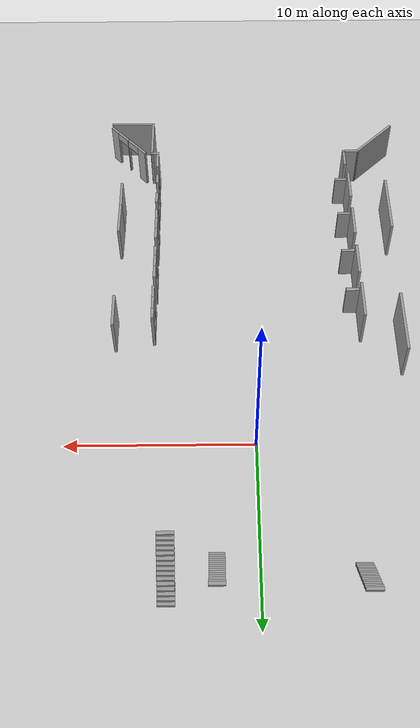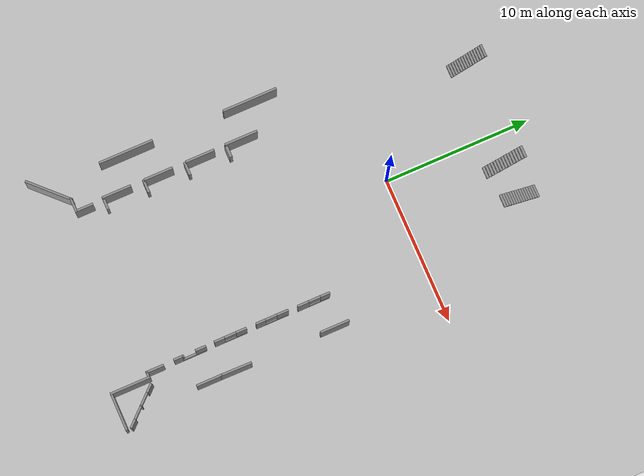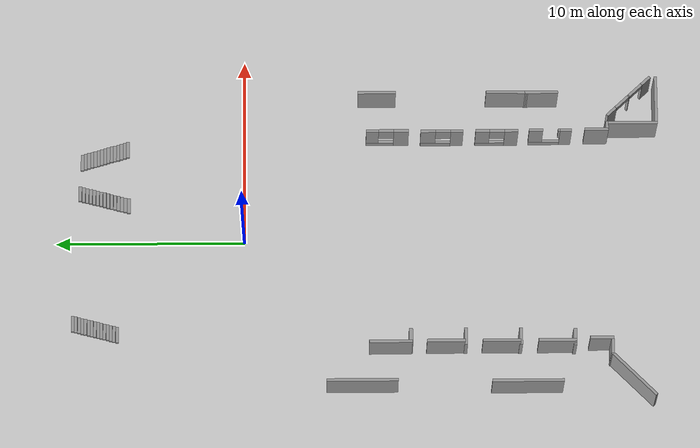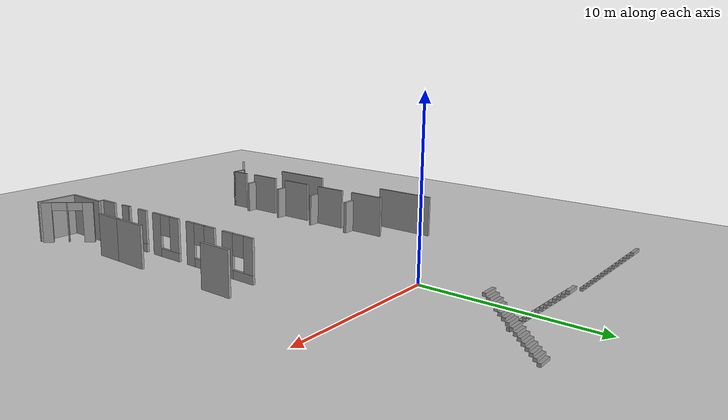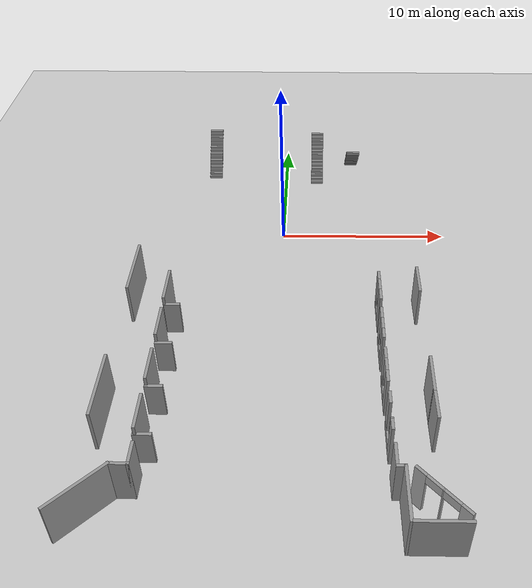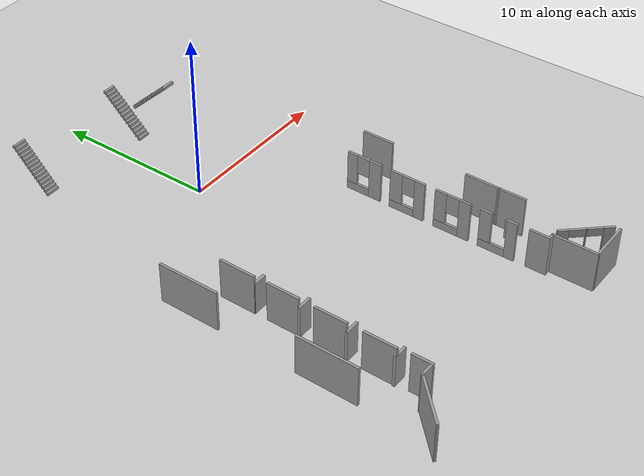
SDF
<sdf version="1.6">
 <world name="default">
  <model name="ground_plane">
   <static>1</static>
   <link name="link">
    <collision name="collision">
     <geometry><plane><normal>0 0 1</normal><size>100 100</size></plane></geometry>
     <surface><friction><ode><mu>100</mu><mu2>50</mu2></ode></friction></surface>
    </collision>
    <visual name="visual">
     <cast_shadows>0</cast_shadows>
     <geometry><plane><normal>0 0 1</normal><size>100 100</size></plane></geometry>
     <material>
      <script><uri>file://media/materials/scripts/gazebo.material</uri><name>Gazebo/Grey</name></script>
     </material>
    </visual>
   </link>
  </model>
  <model name="Parte_DX_(visione_alta_mappa)_CV1">
   <pose>7.84951 -6.02799 0 0 -0 0</pose>
   <link name="Stairs_0">
    <visual name="Stairs_0_Visual_0">
     <pose>-5.77033 12.1776 0.083333 0 -0 -3.14159</pose>
     <geometry><box><size>0.790783 0.17667 0.166667</size></box></geometry>
     <material>
      <script><uri>file://media/materials/scripts/gazebo.material</uri><name>Gazebo/Grey</name></script>
      <ambient>1 1 1 1</ambient>
     </material>
    </visual>
    <collision name="Stairs_0_Collision_0">
     <geometry><box><size>0.790783 0.17667 0.166667</size></box></geometry>
     <pose>-5.77033 12.1776 0.083333 0 -0 -3.14159</pose>
    </collision>
    <visual name="Stairs_0_Visual_1">
     <pose>-5.77033 12.3543 0.25 0 -0 -3.14159</pose>
     <geometry><box><size>0.790783 0.17667 0.166667</size></box></geometry>
     <material>
      <script><uri>file://media/materials/scripts/gazebo.material</uri><name>Gazebo/Grey</name></script>
      <ambient>1 1 1 1</ambient>
     </material>
    </visual>
    <collision name="Stairs_0_Collision_1">
     <geometry><box><size>0.790783 0.17667 0.166667</size></box></geometry>
     <pose>-5.77033 12.3543 0.25 0 -0 -3.14159</pose>
    </collision>
    <visual name="Stairs_0_Visual_2">
     <pose>-5.77033 12.531 0.416667 0 -0 -3.14159</pose>
     <geometry><box><size>0.790783 0.17667 0.166667</size></box></geometry>
     <material>
      <script><uri>file://media/materials/scripts/gazebo.material</uri><name>Gazebo/Grey</name></script>
      <ambient>1 1 1 1</ambient>
     </material>
    </visual>
    <collision name="Stairs_0_Collision_2">
     <geometry><box><size>0.790783 0.17667 0.166667</size></box></geometry>
     <pose>-5.77033 12.531 0.416667 0 -0 -3.14159</pose>
    </collision>
    <visual name="Stairs_0_Visual_3">
     <pose>-5.77033 12.7077 0.583333 0 -0 -3.14159</pose>
     <geometry><box><size>0.790783 0.17667 0.166667</size></box></geometry>
     <material>
      <script><uri>file://media/materials/scripts/gazebo.material</uri><name>Gazebo/Grey</name></script>
      <ambient>1 1 1 1</ambient>
     </material>
    </visual>
    <collision name="Stairs_0_Collision_3">
     <geometry><box><size>0.790783 0.17667 0.166667</size></box></geometry>
     <pose>-5.77033 12.7077 0.583333 0 -0 -3.14159</pose>
    </collision>
    <visual name="Stairs_0_Visual_4">
     <pose>-5.77033 12.8843 0.75 0 -0 -3.14159</pose>
     <geometry><box><size>0.790783 0.17667 0.166667</size></box></geometry>
     <material>
      <script><uri>file://media/materials/scripts/gazebo.material</uri><name>Gazebo/Grey</name></script>
      <ambient>1 1 1 1</ambient>
     </material>
    </visual>
    <collision name="Stairs_0_Collision_4">
     <geometry><box><size>0.790783 0.17667 0.166667</size></box></geometry>
     <pose>-5.77033 12.8843 0.75 0 -0 -3.14159</pose>
    </collision>
    <visual name="Stairs_0_Visual_5">
     <pose>-5.77033 13.061 0.916667 0 -0 -3.14159</pose>
     <geometry><box><size>0.790783 0.17667 0.166667</size></box></geometry>
     <material>
      <script><uri>file://media/materials/scripts/gazebo.material</uri><name>Gazebo/Grey</name></script>
      <ambient>1 1 1 1</ambient>
     </material>
    </visual>
    <collision name="Stairs_0_Collision_5">
     <geometry><box><size>0.790783 0.17667 0.166667</size></box></geometry>
     <pose>-5.77033 13.061 0.916667 0 -0 -3.14159</pose>
    </collision>
    <visual name="Stairs_0_Visual_6">
     <pose>-5.77033 13.2377 1.08333 0 -0 -3.14159</pose>
     <geometry><box><size>0.790783 0.17667 0.166667</size></box></geometry>
     <material>
      <script><uri>file://media/materials/scripts/gazebo.material</uri><name>Gazebo/Grey</name></script>
      <ambient>1 1 1 1</ambient>
     </material>
    </visual>
    <collision name="Stairs_0_Collision_6">
     <geometry><box><size>0.790783 0.17667 0.166667</size></box></geometry>
     <pose>-5.77033 13.2377 1.08333 0 -0 -3.14159</pose>
    </collision>
    <visual name="Stairs_0_Visual_7">
     <pose>-5.77033 13.4143 1.25 0 -0 -3.14159</pose>
     <geometry><box><size>0.790783 0.17667 0.166667</size></box></geometry>
     <material>
      <script><uri>file://media/materials/scripts/gazebo.material</uri><name>Gazebo/Grey</name></script>
      <ambient>1 1 1 1</ambient>
     </material>
    </visual>
    <collision name="Stairs_0_Collision_7">
     <geometry><box><size>0.790783 0.17667 0.166667</size></box></geometry>
     <pose>-5.77033 13.4143 1.25 0 -0 -3.14159</pose>
    </collision>
    <visual name="Stairs_0_Visual_8">
     <pose>-5.77033 13.591 1.41667 0 -0 -3.14159</pose>
     <geometry><box><size>0.790783 0.17667 0.166667</size></box></geometry>
     <material>
      <script><uri>file://media/materials/scripts/gazebo.material</uri><name>Gazebo/Grey</name></script>
      <ambient>1 1 1 1</ambient>
     </material>
    </visual>
    <collision name="Stairs_0_Collision_8">
     <geometry><box><size>0.790783 0.17667 0.166667</size></box></geometry>
     <pose>-5.77033 13.591 1.41667 0 -0 -3.14159</pose>
    </collision>
    <visual name="Stairs_0_Visual_9">
     <pose>-5.77033 13.7677 1.58333 0 -0 -3.14159</pose>
     <geometry><box><size>0.790783 0.17667 0.166667</size></box></geometry>
     <material>
      <script><uri>file://media/materials/scripts/gazebo.material</uri><name>Gazebo/Grey</name></script>
      <ambient>1 1 1 1</ambient>
     </material>
    </visual>
    <collision name="Stairs_0_Collision_9">
     <geometry><box><size>0.790783 0.17667 0.166667</size></box></geometry>
     <pose>-5.77033 13.7677 1.58333 0 -0 -3.14159</pose>
    </collision>
    <visual name="Stairs_0_Visual_10">
     <pose>-5.77033 13.9443 1.75 0 -0 -3.14159</pose>
     <geometry><box><size>0.790783 0.17667 0.166667</size></box></geometry>
     <material>
      <script><uri>file://media/materials/scripts/gazebo.material</uri><name>Gazebo/Grey</name></script>
      <ambient>1 1 1 1</ambient>
     </material>
    </visual>
    <collision name="Stairs_0_Collision_10">
     <geometry><box><size>0.790783 0.17667 0.166667</size></box></geometry>
     <pose>-5.77033 13.9443 1.75 0 -0 -3.14159</pose>
    </collision>
    <visual name="Stairs_0_Visual_11">
     <pose>-5.77033 14.121 1.91667 0 -0 -3.14159</pose>
     <geometry><box><size>0.790783 0.17667 0.166667</size></box></geometry>
     <material>
      <script><uri>file://media/materials/scripts/gazebo.material</uri><name>Gazebo/Grey</name></script>
      <ambient>1 1 1 1</ambient>
     </material>
    </visual>
    <collision name="Stairs_0_Collision_11">
     <geometry><box><size>0.790783 0.17667 0.166667</size></box></geometry>
     <pose>-5.77033 14.121 1.91667 0 -0 -3.14159</pose>
    </collision>
    <visual name="Stairs_0_Visual_12">
     <pose>-5.77033 14.2977 2.08333 0 -0 -3.14159</pose>
     <geometry><box><size>0.790783 0.17667 0.166667</size></box></geometry>
     <material>
      <script><uri>file://media/materials/scripts/gazebo.material</uri><name>Gazebo/Grey</name></script>
      <ambient>1 1 1 1</ambient>
     </material>
    </visual>
    <collision name="Stairs_0_Collision_12">
     <geometry><box><size>0.790783 0.17667 0.166667</size></box></geometry>
     <pose>-5.77033 14.2977 2.08333 0 -0 -3.14159</pose>
    </collision>
    <visual name="Stairs_0_Visual_13">
     <pose>-5.77033 14.4744 2.25 0 -0 -3.14159</pose>
     <geometry><box><size>0.790783 0.17667 0.166667</size></box></geometry>
     <material>
      <script><uri>file://media/materials/scripts/gazebo.material</uri><name>Gazebo/Grey</name></script>
      <ambient>1 1 1 1</ambient>
     </material>
    </visual>
    <collision name="Stairs_0_Collision_13">
     <geometry><box><size>0.790783 0.17667 0.166667</size></box></geometry>
     <pose>-5.77033 14.4744 2.25 0 -0 -3.14159</pose>
    </collision>
    <visual name="Stairs_0_Visual_14">
     <pose>-5.77033 14.651 2.41667 0 -0 -3.14159</pose>
     <geometry><box><size>0.790783 0.17667 0.166667</size></box></geometry>
     <material>
      <script><uri>file://media/materials/scripts/gazebo.material</uri><name>Gazebo/Grey</name></script>
      <ambient>1 1 1 1</ambient>
     </material>
    </visual>
    <collision name="Stairs_0_Collision_14">
     <geometry><box><size>0.790783 0.17667 0.166667</size></box></geometry>
     <pose>-5.77033 14.651 2.41667 0 -0 -3.14159</pose>
    </collision>
   </link>
   <link name="Stairs_1">
    <visual name="Stairs_1_Visual_0">
     <pose>-3.36416 14.6621 0.083333 0 -0 0</pose>
     <geometry><box><size>0.856163 0.179286 0.166667</size></box></geometry>
     <material>
      <script><uri>file://media/materials/scripts/gazebo.material</uri><name>Gazebo/Grey</name></script>
      <ambient>1 1 1 1</ambient>
     </material>
    </visual>
    <collision name="Stairs_1_Collision_0">
     <geometry><box><size>0.856163 0.179286 0.166667</size></box></geometry>
     <pose>-3.36416 14.6621 0.083333 0 -0 0</pose>
    </collision>
    <visual name="Stairs_1_Visual_1">
     <pose>-3.36416 14.4828 0.25 0 -0 0</pose>
     <geometry><box><size>0.856163 0.179286 0.166667</size></box></geometry>
     <material>
      <script><uri>file://media/materials/scripts/gazebo.material</uri><name>Gazebo/Grey</name></script>
      <ambient>1 1 1 1</ambient>
     </material>
    </visual>
    <collision name="Stairs_1_Collision_1">
     <geometry><box><size>0.856163 0.179286 0.166667</size></box></geometry>
     <pose>-3.36416 14.4828 0.25 0 -0 0</pose>
    </collision>
    <visual name="Stairs_1_Visual_2">
     <pose>-3.36416 14.3035 0.416667 0 -0 0</pose>
     <geometry><box><size>0.856163 0.179286 0.166667</size></box></geometry>
     <material>
      <script><uri>file://media/materials/scripts/gazebo.material</uri><name>Gazebo/Grey</name></script>
      <ambient>1 1 1 1</ambient>
     </material>
    </visual>
    <collision name="Stairs_1_Collision_2">
     <geometry><box><size>0.856163 0.179286 0.166667</size></box></geometry>
     <pose>-3.36416 14.3035 0.416667 0 -0 0</pose>
    </collision>
    <visual name="Stairs_1_Visual_3">
     <pose>-3.36416 14.1242 0.583333 0 -0 0</pose>
     <geometry><box><size>0.856163 0.179286 0.166667</size></box></geometry>
     <material>
      <script><uri>file://media/materials/scripts/gazebo.material</uri><name>Gazebo/Grey</name></script>
      <ambient>1 1 1 1</ambient>
     </material>
    </visual>
    <collision name="Stairs_1_Collision_3">
     <geometry><box><size>0.856163 0.179286 0.166667</size></box></geometry>
     <pose>-3.36416 14.1242 0.583333 0 -0 0</pose>
    </collision>
    <visual name="Stairs_1_Visual_4">
     <pose>-3.36416 13.9449 0.75 0 -0 0</pose>
     <geometry><box><size>0.856163 0.179286 0.166667</size></box></geometry>
     <material>
      <script><uri>file://media/materials/scripts/gazebo.material</uri><name>Gazebo/Grey</name></script>
      <ambient>1 1 1 1</ambient>
     </material>
    </visual>
    <collision name="Stairs_1_Collision_4">
     <geometry><box><size>0.856163 0.179286 0.166667</size></box></geometry>
     <pose>-3.36416 13.9449 0.75 0 -0 0</pose>
    </collision>
    <visual name="Stairs_1_Visual_5">
     <pose>-3.36416 13.7656 0.916667 0 -0 0</pose>
     <geometry><box><size>0.856163 0.179286 0.166667</size></box></geometry>
     <material>
      <script><uri>file://media/materials/scripts/gazebo.material</uri><name>Gazebo/Grey</name></script>
      <ambient>1 1 1 1</ambient>
     </material>
    </visual>
    <collision name="Stairs_1_Collision_5">
     <geometry><box><size>0.856163 0.179286 0.166667</size></box></geometry>
     <pose>-3.36416 13.7656 0.916667 0 -0 0</pose>
    </collision>
    <visual name="Stairs_1_Visual_6">
     <pose>-3.36416 13.5863 1.08333 0 -0 0</pose>
     <geometry><box><size>0.856163 0.179286 0.166667</size></box></geometry>
     <material>
      <script><uri>file://media/materials/scripts/gazebo.material</uri><name>Gazebo/Grey</name></script>
      <ambient>1 1 1 1</ambient>
     </material>
    </visual>
    <collision name="Stairs_1_Collision_6">
     <geometry><box><size>0.856163 0.179286 0.166667</size></box></geometry>
     <pose>-3.36416 13.5863 1.08333 0 -0 0</pose>
    </collision>
    <visual name="Stairs_1_Visual_7">
     <pose>-3.36416 13.4071 1.25 0 -0 0</pose>
     <geometry><box><size>0.856163 0.179286 0.166667</size></box></geometry>
     <material>
      <script><uri>file://media/materials/scripts/gazebo.material</uri><name>Gazebo/Grey</name></script>
      <ambient>1 1 1 1</ambient>
     </material>
    </visual>
    <collision name="Stairs_1_Collision_7">
     <geometry><box><size>0.856163 0.179286 0.166667</size></box></geometry>
     <pose>-3.36416 13.4071 1.25 0 -0 0</pose>
    </collision>
    <visual name="Stairs_1_Visual_8">
     <pose>-3.36416 13.2278 1.41667 0 -0 0</pose>
     <geometry><box><size>0.856163 0.179286 0.166667</size></box></geometry>
     <material>
      <script><uri>file://media/materials/scripts/gazebo.material</uri><name>Gazebo/Grey</name></script>
      <ambient>1 1 1 1</ambient>
     </material>
    </visual>
    <collision name="Stairs_1_Collision_8">
     <geometry><box><size>0.856163 0.179286 0.166667</size></box></geometry>
     <pose>-3.36416 13.2278 1.41667 0 -0 0</pose>
    </collision>
    <visual name="Stairs_1_Visual_9">
     <pose>-3.36416 13.0485 1.58333 0 -0 0</pose>
     <geometry><box><size>0.856163 0.179286 0.166667</size></box></geometry>
     <material>
      <script><uri>file://media/materials/scripts/gazebo.material</uri><name>Gazebo/Grey</name></script>
      <ambient>1 1 1 1</ambient>
     </material>
    </visual>
    <collision name="Stairs_1_Collision_9">
     <geometry><box><size>0.856163 0.179286 0.166667</size></box></geometry>
     <pose>-3.36416 13.0485 1.58333 0 -0 0</pose>
    </collision>
    <visual name="Stairs_1_Visual_10">
     <pose>-3.36416 12.8692 1.75 0 -0 0</pose>
     <geometry><box><size>0.856163 0.179286 0.166667</size></box></geometry>
     <material>
      <script><uri>file://media/materials/scripts/gazebo.material</uri><name>Gazebo/Grey</name></script>
      <ambient>1 1 1 1</ambient>
     </material>
    </visual>
    <collision name="Stairs_1_Collision_10">
     <geometry><box><size>0.856163 0.179286 0.166667</size></box></geometry>
     <pose>-3.36416 12.8692 1.75 0 -0 0</pose>
    </collision>
    <visual name="Stairs_1_Visual_11">
     <pose>-3.36416 12.6899 1.91667 0 -0 0</pose>
     <geometry><box><size>0.856163 0.179286 0.166667</size></box></geometry>
     <material>
      <script><uri>file://media/materials/scripts/gazebo.material</uri><name>Gazebo/Grey</name></script>
      <ambient>1 1 1 1</ambient>
     </material>
    </visual>
    <collision name="Stairs_1_Collision_11">
     <geometry><box><size>0.856163 0.179286 0.166667</size></box></geometry>
     <pose>-3.36416 12.6899 1.91667 0 -0 0</pose>
    </collision>
    <visual name="Stairs_1_Visual_12">
     <pose>-3.36416 12.5106 2.08333 0 -0 0</pose>
     <geometry><box><size>0.856163 0.179286 0.166667</size></box></geometry>
     <material>
      <script><uri>file://media/materials/scripts/gazebo.material</uri><name>Gazebo/Grey</name></script>
      <ambient>1 1 1 1</ambient>
     </material>
    </visual>
    <collision name="Stairs_1_Collision_12">
     <geometry><box><size>0.856163 0.179286 0.166667</size></box></geometry>
     <pose>-3.36416 12.5106 2.08333 0 -0 0</pose>
    </collision>
    <visual name="Stairs_1_Visual_13">
     <pose>-3.36416 12.3313 2.25 0 -0 0</pose>
     <geometry><box><size>0.856163 0.179286 0.166667</size></box></geometry>
     <material>
      <script><uri>file://media/materials/scripts/gazebo.material</uri><name>Gazebo/Grey</name></script>
      <ambient>1 1 1 1</ambient>
     </material>
    </visual>
    <collision name="Stairs_1_Collision_13">
     <geometry><box><size>0.856163 0.179286 0.166667</size></box></geometry>
     <pose>-3.36416 12.3313 2.25 0 -0 0</pose>
    </collision>
    <visual name="Stairs_1_Visual_14">
     <pose>-3.36416 12.1521 2.41667 0 -0 0</pose>
     <geometry><box><size>0.856163 0.179286 0.166667</size></box></geometry>
     <material>
      <script><uri>file://media/materials/scripts/gazebo.material</uri><name>Gazebo/Grey</name></script>
      <ambient>1 1 1 1</ambient>
     </material>
    </visual>
    <collision name="Stairs_1_Collision_14">
     <geometry><box><size>0.856163 0.179286 0.166667</size></box></geometry>
     <pose>-3.36416 12.1521 2.41667 0 -0 0</pose>
    </collision>
   </link>
   <link name="Wall_103">
    <collision name="Wall_103_Collision">
     <geometry><box><size>2 0.15 2.5</size></box></geometry>
     <pose>0 0 1.25 0 -0 0</pose>
    </collision>
    <visual name="Wall_103_Visual">
     <pose>0 0 1.25 0 -0 0</pose>
     <geometry><box><size>2 0.15 2.5</size></box></geometry>
     <material>
      <script><uri>file://media/materials/scripts/gazebo.material</uri><name>Gazebo/Grey</name></script>
      <ambient>1 1 1 1</ambient>
     </material>
    </visual>
    <pose>-0.253384 -1.01188 0 0 0 -1.5708</pose>
   </link>
   <link name="Wall_113">
    <collision name="Wall_113_Collision">
     <geometry><box><size>2.21308 0.15 2.5</size></box></geometry>
     <pose>0 0 1.25 0 -0 0</pose>
    </collision>
    <visual name="Wall_113_Visual">
     <pose>0 0 1.25 0 -0 0</pose>
     <geometry><box><size>2.21308 0.15 2.5</size></box></geometry>
     <material>
      <script><uri>file://media/materials/scripts/gazebo.material</uri><name>Gazebo/Grey</name></script>
      <ambient>1 1 1 1</ambient>
     </material>
    </visual>
    <pose>-0.262289 -7.91149 0 0 0 -1.58491</pose>
   </link>
   <link name="Wall_150">
    <collision name="Wall_150_Collision">
     <geometry><box><size>2.5 0.15 2.5</size></box></geometry>
     <pose>0 0 1.25 0 -0 0</pose>
    </collision>
    <visual name="Wall_150_Visual">
     <pose>0 0 1.25 0 -0 0</pose>
     <geometry><box><size>2.5 0.15 2.5</size></box></geometry>
     <material>
      <script><uri>file://media/materials/scripts/gazebo.material</uri><name>Gazebo/Grey</name></script>
      <ambient>1 1 1 1</ambient>
     </material>
    </visual>
    <pose>-0.698526 -15.7953 0 0 -0 0</pose>
   </link>
   <link name="Wall_157">
    <collision name="Wall_157_Collision">
     <geometry><box><size>2.75 0.15 2.5</size></box></geometry>
     <pose>0 0 1.25 0 -0 0</pose>
    </collision>
    <visual name="Wall_157_Visual">
     <pose>0 0 1.25 0 -0 0</pose>
     <geometry><box><size>2.75 0.15 2.5</size></box></geometry>
     <material>
      <script><uri>file://media/materials/scripts/gazebo.material</uri><name>Gazebo/Grey</name></script>
      <ambient>1 1 1 1</ambient>
     </material>
    </visual>
    <pose>-1.9853 -14.4816 0 0 0 -1.5708</pose>
   </link>
   <link name="Wall_160">
    <collision name="Wall_160_Collision">
     <geometry><box><size>0.5 0.15 2.5</size></box></geometry>
     <pose>0 0 1.25 0 -0 0</pose>
    </collision>
    <visual name="Wall_160_Visual">
     <pose>0 0 1.25 0 -0 0</pose>
     <geometry><box><size>0.5 0.15 2.5</size></box></geometry>
     <material>
      <script><uri>file://media/materials/scripts/gazebo.material</uri><name>Gazebo/Grey</name></script>
      <ambient>1 1 1 1</ambient>
     </material>
    </visual>
    <pose>-2.1603 -13.1816 0 0 -0 3.14159</pose>
   </link>
   <link name="Wall_162">
    <collision name="Wall_162_Collision">
     <geometry><box><size>1.25 0.15 2.5</size></box></geometry>
     <pose>0 0 1.25 0 -0 0</pose>
    </collision>
    <visual name="Wall_162_Visual">
     <pose>0 0 1.25 0 -0 0</pose>
     <geometry><box><size>1.25 0.15 2.5</size></box></geometry>
     <material>
      <script><uri>file://media/materials/scripts/gazebo.material</uri><name>Gazebo/Grey</name></script>
      <ambient>1 1 1 1</ambient>
     </material>
    </visual>
    <pose>-2.3378 -12.6298 0 0 0 -1.5708</pose>
   </link>
   <link name="Wall_168">
    <pose>-2.37767 -10.186 0 0 -0 1.5708</pose>
    <visual name="Wall_168_Visual_0">
     <pose>-0.818759 0 1.25 0 -0 0</pose>
     <geometry><box><size>0.612482 0.15 2.5</size></box></geometry>
     <material>
      <script><uri>file://media/materials/scripts/gazebo.material</uri><name>Gazebo/Grey</name></script>
      <ambient>1 1 1 1</ambient>
     </material>
    </visual>
    <collision name="Wall_168_Collision_0">
     <geometry><box><size>0.612482 0.15 2.5</size></box></geometry>
     <pose>-0.818759 0 1.25 0 -0 0</pose>
    </collision>
    <visual name="Wall_168_Visual_1">
     <pose>0.306241 0 0.25 0 -0 0</pose>
     <geometry><box><size>1.63752 0.15 0.5</size></box></geometry>
     <material>
      <script><uri>file://media/materials/scripts/gazebo.material</uri><name>Gazebo/Grey</name></script>
      <ambient>1 1 1 1</ambient>
     </material>
    </visual>
    <collision name="Wall_168_Collision_1">
     <geometry><box><size>1.63752 0.15 0.5</size></box></geometry>
     <pose>0.306241 0 0.25 0 -0 0</pose>
    </collision>
    <visual name="Wall_168_Visual_2">
     <pose>0.760521 0 1.5 0 -0 0</pose>
     <geometry><box><size>0.728959 0.15 2</size></box></geometry>
     <material>
      <script><uri>file://media/materials/scripts/gazebo.material</uri><name>Gazebo/Grey</name></script>
      <ambient>1 1 1 1</ambient>
     </material>
    </visual>
    <collision name="Wall_168_Collision_2">
     <geometry><box><size>0.728959 0.15 2</size></box></geometry>
     <pose>0.760521 0 1.5 0 -0 0</pose>
    </collision>
    <visual name="Wall_168_Visual_3">
     <pose>-0.458239 0 1.9 0 -0 0</pose>
     <geometry><box><size>0.10856 0.15 1.2</size></box></geometry>
     <material>
      <script><uri>file://media/materials/scripts/gazebo.material</uri><name>Gazebo/Grey</name></script>
      <ambient>1 1 1 1</ambient>
     </material>
    </visual>
    <collision name="Wall_168_Collision_3">
     <geometry><box><size>0.10856 0.15 1.2</size></box></geometry>
     <pose>-0.458239 0 1.9 0 -0 0</pose>
    </collision>
   </link>
   <link name="Wall_170">
    <pose>-2.40042 -7.35471 0 0 -0 1.5708</pose>
    <visual name="Wall_170_Visual_0">
     <pose>-0.770697 0 1.25 0 -0 0</pose>
     <geometry><box><size>0.708605 0.15 2.5</size></box></geometry>
     <material>
      <script><uri>file://media/materials/scripts/gazebo.material</uri><name>Gazebo/Grey</name></script>
      <ambient>1 1 1 1</ambient>
     </material>
    </visual>
    <collision name="Wall_170_Collision_0">
     <geometry><box><size>0.708605 0.15 2.5</size></box></geometry>
     <pose>-0.770697 0 1.25 0 -0 0</pose>
    </collision>
    <visual name="Wall_170_Visual_1">
     <pose>0.354303 0 0.25 0 -0 0</pose>
     <geometry><box><size>1.5414 0.15 0.5</size></box></geometry>
     <material>
      <script><uri>file://media/materials/scripts/gazebo.material</uri><name>Gazebo/Grey</name></script>
      <ambient>1 1 1 1</ambient>
     </material>
    </visual>
    <collision name="Wall_170_Collision_1">
     <geometry><box><size>1.5414 0.15 0.5</size></box></geometry>
     <pose>0.354303 0 0.25 0 -0 0</pose>
    </collision>
    <visual name="Wall_170_Visual_2">
     <pose>0.754303 0 1.5 0 -0 0</pose>
     <geometry><box><size>0.741395 0.15 2</size></box></geometry>
     <material>
      <script><uri>file://media/materials/scripts/gazebo.material</uri><name>Gazebo/Grey</name></script>
      <ambient>1 1 1 1</ambient>
     </material>
    </visual>
    <collision name="Wall_170_Collision_2">
     <geometry><box><size>0.741395 0.15 2</size></box></geometry>
     <pose>0.754303 0 1.5 0 -0 0</pose>
    </collision>
    <visual name="Wall_170_Visual_3">
     <pose>-0.016395 0 1.9 0 -0 0</pose>
     <geometry><box><size>0.8 0.15 1.2</size></box></geometry>
     <material>
      <script><uri>file://media/materials/scripts/gazebo.material</uri><name>Gazebo/Grey</name></script>
      <ambient>1 1 1 1</ambient>
     </material>
    </visual>
    <collision name="Wall_170_Collision_3">
     <geometry><box><size>0.8 0.15 1.2</size></box></geometry>
     <pose>-0.016395 0 1.9 0 -0 0</pose>
    </collision>
   </link>
   <link name="Wall_172">
    <pose>-2.40402 -4.44612 0 0 -0 1.5708</pose>
    <visual name="Wall_172_Visual_0">
     <pose>-0.795609 0 1.25 0 -0 0</pose>
     <geometry><box><size>0.658782 0.15 2.5</size></box></geometry>
     <material>
      <script><uri>file://media/materials/scripts/gazebo.material</uri><name>Gazebo/Grey</name></script>
      <ambient>1 1 1 1</ambient>
     </material>
    </visual>
    <collision name="Wall_172_Collision_0">
     <geometry><box><size>0.658782 0.15 2.5</size></box></geometry>
     <pose>-0.795609 0 1.25 0 -0 0</pose>
    </collision>
    <visual name="Wall_172_Visual_1">
     <pose>0.329391 0 0.25 0 -0 0</pose>
     <geometry><box><size>1.59122 0.15 0.5</size></box></geometry>
     <material>
      <script><uri>file://media/materials/scripts/gazebo.material</uri><name>Gazebo/Grey</name></script>
      <ambient>1 1 1 1</ambient>
     </material>
    </visual>
    <collision name="Wall_172_Collision_1">
     <geometry><box><size>1.59122 0.15 0.5</size></box></geometry>
     <pose>0.329391 0 0.25 0 -0 0</pose>
    </collision>
    <visual name="Wall_172_Visual_2">
     <pose>0.729391 0 1.5 0 -0 0</pose>
     <geometry><box><size>0.791218 0.15 2</size></box></geometry>
     <material>
      <script><uri>file://media/materials/scripts/gazebo.material</uri><name>Gazebo/Grey</name></script>
      <ambient>1 1 1 1</ambient>
     </material>
    </visual>
    <collision name="Wall_172_Collision_2">
     <geometry><box><size>0.791218 0.15 2</size></box></geometry>
     <pose>0.729391 0 1.5 0 -0 0</pose>
    </collision>
    <visual name="Wall_172_Visual_3">
     <pose>-0.066218 0 1.9 0 -0 0</pose>
     <geometry><box><size>0.8 0.15 1.2</size></box></geometry>
     <material>
      <script><uri>file://media/materials/scripts/gazebo.material</uri><name>Gazebo/Grey</name></script>
      <ambient>1 1 1 1</ambient>
     </material>
    </visual>
    <collision name="Wall_172_Collision_3">
     <geometry><box><size>0.8 0.15 1.2</size></box></geometry>
     <pose>-0.066218 0 1.9 0 -0 0</pose>
    </collision>
   </link>
   <link name="Wall_174">
    <pose>-2.37395 -1.55892 0 0 -0 1.5708</pose>
    <visual name="Wall_174_Visual_0">
     <pose>-0.729778 0 1.25 0 -0 0</pose>
     <geometry><box><size>0.790443 0.15 2.5</size></box></geometry>
     <material>
      <script><uri>file://media/materials/scripts/gazebo.material</uri><name>Gazebo/Grey</name></script>
      <ambient>1 1 1 1</ambient>
     </material>
    </visual>
    <collision name="Wall_174_Collision_0">
     <geometry><box><size>0.790443 0.15 2.5</size></box></geometry>
     <pose>-0.729778 0 1.25 0 -0 0</pose>
    </collision>
    <visual name="Wall_174_Visual_1">
     <pose>0.395222 0 0.25 0 -0 0</pose>
     <geometry><box><size>1.45956 0.15 0.5</size></box></geometry>
     <material>
      <script><uri>file://media/materials/scripts/gazebo.material</uri><name>Gazebo/Grey</name></script>
      <ambient>1 1 1 1</ambient>
     </material>
    </visual>
    <collision name="Wall_174_Collision_1">
     <geometry><box><size>1.45956 0.15 0.5</size></box></geometry>
     <pose>0.395222 0 0.25 0 -0 0</pose>
    </collision>
    <visual name="Wall_174_Visual_2">
     <pose>0.795222 0 1.5 0 -0 0</pose>
     <geometry><box><size>0.659557 0.15 2</size></box></geometry>
     <material>
      <script><uri>file://media/materials/scripts/gazebo.material</uri><name>Gazebo/Grey</name></script>
      <ambient>1 1 1 1</ambient>
     </material>
    </visual>
    <collision name="Wall_174_Collision_2">
     <geometry><box><size>0.659557 0.15 2</size></box></geometry>
     <pose>0.795222 0 1.5 0 -0 0</pose>
    </collision>
    <visual name="Wall_174_Visual_3">
     <pose>0.065443 0 1.9 0 -0 0</pose>
     <geometry><box><size>0.8 0.15 1.2</size></box></geometry>
     <material>
      <script><uri>file://media/materials/scripts/gazebo.material</uri><name>Gazebo/Grey</name></script>
      <ambient>1 1 1 1</ambient>
     </material>
    </visual>
    <collision name="Wall_174_Collision_3">
     <geometry><box><size>0.8 0.15 1.2</size></box></geometry>
     <pose>0.065443 0 1.9 0 -0 0</pose>
    </collision>
   </link>
   <link name="Wall_200">
    <pose>-0.523632 -14.347 0 0 0 -0.827894</pose>
    <visual name="Wall_200_Visual_0">
     <pose>-1.24374 0 1.25 0 -0 0</pose>
     <geometry><box><size>0.644953 0.15 2.5</size></box></geometry>
     <material>
      <script><uri>file://media/materials/scripts/gazebo.material</uri><name>Gazebo/Grey</name></script>
      <ambient>1 1 1 1</ambient>
     </material>
    </visual>
    <collision name="Wall_200_Collision_0">
     <geometry><box><size>0.644953 0.15 2.5</size></box></geometry>
     <pose>-1.24374 0 1.25 0 -0 0</pose>
    </collision>
    <visual name="Wall_200_Visual_1">
     <pose>0.007769 0 1.25 0 -0 0</pose>
     <geometry><box><size>0.058074 0.15 2.5</size></box></geometry>
     <material>
      <script><uri>file://media/materials/scripts/gazebo.material</uri><name>Gazebo/Grey</name></script>
      <ambient>1 1 1 1</ambient>
     </material>
    </visual>
    <collision name="Wall_200_Collision_1">
     <geometry><box><size>0.058074 0.15 2.5</size></box></geometry>
     <pose>0.007769 0 1.25 0 -0 0</pose>
    </collision>
    <visual name="Wall_200_Visual_2">
     <pose>1.25151 0 1.25 0 -0 0</pose>
     <geometry><box><size>0.629415 0.15 2.5</size></box></geometry>
     <material>
      <script><uri>file://media/materials/scripts/gazebo.material</uri><name>Gazebo/Grey</name></script>
      <ambient>1 1 1 1</ambient>
     </material>
    </visual>
    <collision name="Wall_200_Collision_2">
     <geometry><box><size>0.629415 0.15 2.5</size></box></geometry>
     <pose>1.25151 0 1.25 0 -0 0</pose>
    </collision>
    <visual name="Wall_200_Visual_3">
     <pose>-0.471267 0 2.25 0 -0 0</pose>
     <geometry><box><size>0.9 0.15 0.5</size></box></geometry>
     <material>
      <script><uri>file://media/materials/scripts/gazebo.material</uri><name>Gazebo/Grey</name></script>
      <ambient>1 1 1 1</ambient>
     </material>
    </visual>
    <collision name="Wall_200_Collision_3">
     <geometry><box><size>0.9 0.15 0.5</size></box></geometry>
     <pose>-0.471267 0 2.25 0 -0 0</pose>
    </collision>
    <visual name="Wall_200_Visual_4">
     <pose>0.486806 0 2.25 0 -0 0</pose>
     <geometry><box><size>0.9 0.15 0.5</size></box></geometry>
     <material>
      <script><uri>file://media/materials/scripts/gazebo.material</uri><name>Gazebo/Grey</name></script>
      <ambient>1 1 1 1</ambient>
     </material>
    </visual>
    <collision name="Wall_200_Collision_4">
     <geometry><box><size>0.9 0.15 0.5</size></box></geometry>
     <pose>0.486806 0 2.25 0 -0 0</pose>
    </collision>
   </link>
   <link name="Wall_79">
    <collision name="Wall_79_Collision">
     <geometry><box><size>1.75 0.15 2.5</size></box></geometry>
     <pose>0 0 1.25 0 -0 0</pose>
    </collision>
    <visual name="Wall_79_Visual">
     <pose>0 0 1.25 0 -0 0</pose>
     <geometry><box><size>1.75 0.15 2.5</size></box></geometry>
     <material>
      <script><uri>file://media/materials/scripts/gazebo.material</uri><name>Gazebo/Grey</name></script>
      <ambient>1 1 1 1</ambient>
     </material>
    </visual>
    <pose>-0.276848 -9.74292 0 0 0 -1.5708</pose>
   </link>
   <static>1</static>
  </model>
  <model name="ca_vignal_1">
   <pose>-8.21048 -6.13752 0 0 -0 0</pose>
   <link name="Door_0">
    <collision name="Door_0_Collision">
     <geometry><box><size>0.865695 0.2 2</size></box></geometry>
     <pose>0 0 1 0 -0 0</pose>
    </collision>
    <visual name="Door_0_Visual">
     <pose>0 0 1 0 -0 0</pose>
     <geometry><box><size>0.865695 0.2 2</size></box></geometry>
     <material>
      <script><uri>file://media/materials/scripts/gazebo.material</uri><name>Gazebo/Grey</name></script>
     </material>
    </visual>
    <pose>2.58868 -2.60647 0 0 -0 0</pose>
   </link>
   <link name="Door_2">
    <collision name="Door_2_Collision">
     <geometry><box><size>0.9 0.17 2</size></box></geometry>
     <pose>0 0 1 0 -0 0</pose>
    </collision>
    <visual name="Door_2_Visual">
     <pose>0 0 1 0 -0 0</pose>
     <geometry><box><size>0.9 0.17 2</size></box></geometry>
     <material>
      <script><uri>file://media/materials/scripts/gazebo.material</uri><name>Gazebo/Grey</name></script>
     </material>
    </visual>
    <pose>2.58767 -5.48891 0 0 -0 0</pose>
   </link>
   <link name="Door_3">
    <collision name="Door_3_Collision">
     <geometry><box><size>0.9 0.17 2</size></box></geometry>
     <pose>0 0 1 0 -0 0</pose>
    </collision>
    <visual name="Door_3_Visual">
     <pose>0 0 1 0 -0 0</pose>
     <geometry><box><size>0.9 0.17 2</size></box></geometry>
     <material>
      <script><uri>file://media/materials/scripts/gazebo.material</uri><name>Gazebo/Grey</name></script>
     </material>
    </visual>
    <pose>2.57631 -8.37477 0 0 -0 0</pose>
   </link>
   <link name="Door_4">
    <collision name="Door_4_Collision">
     <geometry><box><size>0.9 0.17 2</size></box></geometry>
     <pose>0 0 1 0 -0 0</pose>
    </collision>
    <visual name="Door_4_Visual">
     <pose>0 0 1 0 -0 0</pose>
     <geometry><box><size>0.9 0.17 2</size></box></geometry>
     <material>
      <script><uri>file://media/materials/scripts/gazebo.material</uri><name>Gazebo/Grey</name></script>
     </material>
    </visual>
    <pose>2.53686 -11.2152 0 0 -0 0</pose>
   </link>
   <link name="Stairs_1">
    <visual name="Stairs_1_Visual_0">
     <pose>3.21816 12.8727 0.083333 0 -0 -3.14159</pose>
     <geometry><box><size>0.849625 0.158942 0.166667</size></box></geometry>
     <material>
      <script><uri>file://media/materials/scripts/gazebo.material</uri><name>Gazebo/Grey</name></script>
      <ambient>1 1 1 1</ambient>
     </material>
    </visual>
    <collision name="Stairs_1_Collision_0">
     <geometry><box><size>0.849625 0.158942 0.166667</size></box></geometry>
     <pose>3.21816 12.8727 0.083333 0 -0 -3.14159</pose>
    </collision>
    <visual name="Stairs_1_Visual_1">
     <pose>3.21816 13.0316 0.25 0 -0 -3.14159</pose>
     <geometry><box><size>0.849625 0.158942 0.166667</size></box></geometry>
     <material>
      <script><uri>file://media/materials/scripts/gazebo.material</uri><name>Gazebo/Grey</name></script>
      <ambient>1 1 1 1</ambient>
     </material>
    </visual>
    <collision name="Stairs_1_Collision_1">
     <geometry><box><size>0.849625 0.158942 0.166667</size></box></geometry>
     <pose>3.21816 13.0316 0.25 0 -0 -3.14159</pose>
    </collision>
    <visual name="Stairs_1_Visual_2">
     <pose>3.21816 13.1906 0.416667 0 -0 -3.14159</pose>
     <geometry><box><size>0.849625 0.158942 0.166667</size></box></geometry>
     <material>
      <script><uri>file://media/materials/scripts/gazebo.material</uri><name>Gazebo/Grey</name></script>
      <ambient>1 1 1 1</ambient>
     </material>
    </visual>
    <collision name="Stairs_1_Collision_2">
     <geometry><box><size>0.849625 0.158942 0.166667</size></box></geometry>
     <pose>3.21816 13.1906 0.416667 0 -0 -3.14159</pose>
    </collision>
    <visual name="Stairs_1_Visual_3">
     <pose>3.21816 13.3495 0.583333 0 -0 -3.14159</pose>
     <geometry><box><size>0.849625 0.158942 0.166667</size></box></geometry>
     <material>
      <script><uri>file://media/materials/scripts/gazebo.material</uri><name>Gazebo/Grey</name></script>
      <ambient>1 1 1 1</ambient>
     </material>
    </visual>
    <collision name="Stairs_1_Collision_3">
     <geometry><box><size>0.849625 0.158942 0.166667</size></box></geometry>
     <pose>3.21816 13.3495 0.583333 0 -0 -3.14159</pose>
    </collision>
    <visual name="Stairs_1_Visual_4">
     <pose>3.21816 13.5085 0.75 0 -0 -3.14159</pose>
     <geometry><box><size>0.849625 0.158942 0.166667</size></box></geometry>
     <material>
      <script><uri>file://media/materials/scripts/gazebo.material</uri><name>Gazebo/Grey</name></script>
      <ambient>1 1 1 1</ambient>
     </material>
    </visual>
    <collision name="Stairs_1_Collision_4">
     <geometry><box><size>0.849625 0.158942 0.166667</size></box></geometry>
     <pose>3.21816 13.5085 0.75 0 -0 -3.14159</pose>
    </collision>
    <visual name="Stairs_1_Visual_5">
     <pose>3.21816 13.6674 0.916667 0 -0 -3.14159</pose>
     <geometry><box><size>0.849625 0.158942 0.166667</size></box></geometry>
     <material>
      <script><uri>file://media/materials/scripts/gazebo.material</uri><name>Gazebo/Grey</name></script>
      <ambient>1 1 1 1</ambient>
     </material>
    </visual>
    <collision name="Stairs_1_Collision_5">
     <geometry><box><size>0.849625 0.158942 0.166667</size></box></geometry>
     <pose>3.21816 13.6674 0.916667 0 -0 -3.14159</pose>
    </collision>
    <visual name="Stairs_1_Visual_6">
     <pose>3.21816 13.8263 1.08333 0 -0 -3.14159</pose>
     <geometry><box><size>0.849625 0.158942 0.166667</size></box></geometry>
     <material>
      <script><uri>file://media/materials/scripts/gazebo.material</uri><name>Gazebo/Grey</name></script>
      <ambient>1 1 1 1</ambient>
     </material>
    </visual>
    <collision name="Stairs_1_Collision_6">
     <geometry><box><size>0.849625 0.158942 0.166667</size></box></geometry>
     <pose>3.21816 13.8263 1.08333 0 -0 -3.14159</pose>
    </collision>
    <visual name="Stairs_1_Visual_7">
     <pose>3.21816 13.9853 1.25 0 -0 -3.14159</pose>
     <geometry><box><size>0.849625 0.158942 0.166667</size></box></geometry>
     <material>
      <script><uri>file://media/materials/scripts/gazebo.material</uri><name>Gazebo/Grey</name></script>
      <ambient>1 1 1 1</ambient>
     </material>
    </visual>
    <collision name="Stairs_1_Collision_7">
     <geometry><box><size>0.849625 0.158942 0.166667</size></box></geometry>
     <pose>3.21816 13.9853 1.25 0 -0 -3.14159</pose>
    </collision>
    <visual name="Stairs_1_Visual_8">
     <pose>3.21816 14.1442 1.41667 0 -0 -3.14159</pose>
     <geometry><box><size>0.849625 0.158942 0.166667</size></box></geometry>
     <material>
      <script><uri>file://media/materials/scripts/gazebo.material</uri><name>Gazebo/Grey</name></script>
      <ambient>1 1 1 1</ambient>
     </material>
    </visual>
    <collision name="Stairs_1_Collision_8">
     <geometry><box><size>0.849625 0.158942 0.166667</size></box></geometry>
     <pose>3.21816 14.1442 1.41667 0 -0 -3.14159</pose>
    </collision>
    <visual name="Stairs_1_Visual_9">
     <pose>3.21816 14.3032 1.58333 0 -0 -3.14159</pose>
     <geometry><box><size>0.849625 0.158942 0.166667</size></box></geometry>
     <material>
      <script><uri>file://media/materials/scripts/gazebo.material</uri><name>Gazebo/Grey</name></script>
      <ambient>1 1 1 1</ambient>
     </material>
    </visual>
    <collision name="Stairs_1_Collision_9">
     <geometry><box><size>0.849625 0.158942 0.166667</size></box></geometry>
     <pose>3.21816 14.3032 1.58333 0 -0 -3.14159</pose>
    </collision>
    <visual name="Stairs_1_Visual_10">
     <pose>3.21816 14.4621 1.75 0 -0 -3.14159</pose>
     <geometry><box><size>0.849625 0.158942 0.166667</size></box></geometry>
     <material>
      <script><uri>file://media/materials/scripts/gazebo.material</uri><name>Gazebo/Grey</name></script>
      <ambient>1 1 1 1</ambient>
     </material>
    </visual>
    <collision name="Stairs_1_Collision_10">
     <geometry><box><size>0.849625 0.158942 0.166667</size></box></geometry>
     <pose>3.21816 14.4621 1.75 0 -0 -3.14159</pose>
    </collision>
    <visual name="Stairs_1_Visual_11">
     <pose>3.21816 14.6211 1.91667 0 -0 -3.14159</pose>
     <geometry><box><size>0.849625 0.158942 0.166667</size></box></geometry>
     <material>
      <script><uri>file://media/materials/scripts/gazebo.material</uri><name>Gazebo/Grey</name></script>
      <ambient>1 1 1 1</ambient>
     </material>
    </visual>
    <collision name="Stairs_1_Collision_11">
     <geometry><box><size>0.849625 0.158942 0.166667</size></box></geometry>
     <pose>3.21816 14.6211 1.91667 0 -0 -3.14159</pose>
    </collision>
    <visual name="Stairs_1_Visual_12">
     <pose>3.21816 14.78 2.08333 0 -0 -3.14159</pose>
     <geometry><box><size>0.849625 0.158942 0.166667</size></box></geometry>
     <material>
      <script><uri>file://media/materials/scripts/gazebo.material</uri><name>Gazebo/Grey</name></script>
      <ambient>1 1 1 1</ambient>
     </material>
    </visual>
    <collision name="Stairs_1_Collision_12">
     <geometry><box><size>0.849625 0.158942 0.166667</size></box></geometry>
     <pose>3.21816 14.78 2.08333 0 -0 -3.14159</pose>
    </collision>
    <visual name="Stairs_1_Visual_13">
     <pose>3.21816 14.9389 2.25 0 -0 -3.14159</pose>
     <geometry><box><size>0.849625 0.158942 0.166667</size></box></geometry>
     <material>
      <script><uri>file://media/materials/scripts/gazebo.material</uri><name>Gazebo/Grey</name></script>
      <ambient>1 1 1 1</ambient>
     </material>
    </visual>
    <collision name="Stairs_1_Collision_13">
     <geometry><box><size>0.849625 0.158942 0.166667</size></box></geometry>
     <pose>3.21816 14.9389 2.25 0 -0 -3.14159</pose>
    </collision>
    <visual name="Stairs_1_Visual_14">
     <pose>3.21816 15.0979 2.41667 0 -0 -3.14159</pose>
     <geometry><box><size>0.849625 0.158942 0.166667</size></box></geometry>
     <material>
      <script><uri>file://media/materials/scripts/gazebo.material</uri><name>Gazebo/Grey</name></script>
      <ambient>1 1 1 1</ambient>
     </material>
    </visual>
    <collision name="Stairs_1_Collision_14">
     <geometry><box><size>0.849625 0.158942 0.166667</size></box></geometry>
     <pose>3.21816 15.0979 2.41667 0 -0 -3.14159</pose>
    </collision>
   </link>
   <link name="Wall_45">
    <collision name="Wall_45_Collision">
     <geometry><box><size>3.75 0.15 2.5</size></box></geometry>
     <pose>0 0 1.25 0 -0 0</pose>
    </collision>
    <visual name="Wall_45_Visual">
     <pose>0 0 1.25 0 -0 0</pose>
     <geometry><box><size>3.75 0.15 2.5</size></box></geometry>
     <material>
      <script><uri>file://media/materials/scripts/gazebo.material</uri><name>Gazebo/Grey</name></script>
      <ambient>1 1 1 1</ambient>
     </material>
    </visual>
    <pose>0.065752 -8.70696 0 0 -0 1.5708</pose>
   </link>
   <link name="Wall_70">
    <collision name="Wall_70_Collision">
     <geometry><box><size>3.25 0.15 2.5</size></box></geometry>
     <pose>0 0 1.25 0 -0 0</pose>
    </collision>
    <visual name="Wall_70_Visual">
     <pose>0 0 1.25 0 -0 0</pose>
     <geometry><box><size>3.25 0.15 2.5</size></box></geometry>
     <material>
      <script><uri>file://media/materials/scripts/gazebo.material</uri><name>Gazebo/Grey</name></script>
      <ambient>1 1 1 1</ambient>
     </material>
    </visual>
    <pose>0.406702 -14.2431 0 0 -0 0.785398</pose>
   </link>
   <link name="Wall_71">
    <collision name="Wall_71_Collision">
     <geometry><box><size>1 0.15 2.5</size></box></geometry>
     <pose>0 0 1.25 0 -0 0</pose>
    </collision>
    <visual name="Wall_71_Visual">
     <pose>0 0 1.25 0 -0 0</pose>
     <geometry><box><size>1 0.15 2.5</size></box></geometry>
     <material>
      <script><uri>file://media/materials/scripts/gazebo.material</uri><name>Gazebo/Grey</name></script>
      <ambient>1 1 1 1</ambient>
     </material>
    </visual>
    <pose>1.92772 -13.1471 0 0 -0 0</pose>
   </link>
   <link name="Wall_72">
    <collision name="Wall_72_Collision">
     <geometry><box><size>1.25 0.15 2.5</size></box></geometry>
     <pose>0 0 1.25 0 -0 0</pose>
    </collision>
    <visual name="Wall_72_Visual">
     <pose>0 0 1.25 0 -0 0</pose>
     <geometry><box><size>1.25 0.15 2.5</size></box></geometry>
     <material>
      <script><uri>file://media/materials/scripts/gazebo.material</uri><name>Gazebo/Grey</name></script>
      <ambient>1 1 1 1</ambient>
     </material>
    </visual>
    <pose>2.35272 -12.5971 0 0 -0 1.5708</pose>
   </link>
   <link name="Wall_74">
    <collision name="Wall_74_Collision">
     <geometry><box><size>2 0.15 2.5</size></box></geometry>
     <pose>0 0 1.25 0 -0 0</pose>
    </collision>
    <visual name="Wall_74_Visual">
     <pose>0 0 1.25 0 -0 0</pose>
     <geometry><box><size>2 0.15 2.5</size></box></geometry>
     <material>
      <script><uri>file://media/materials/scripts/gazebo.material</uri><name>Gazebo/Grey</name></script>
      <ambient>1 1 1 1</ambient>
     </material>
    </visual>
    <pose>2.23077 -10.2773 0 0 -0 1.5708</pose>
   </link>
   <link name="Wall_76">
    <collision name="Wall_76_Collision">
     <geometry><box><size>2 0.15 2.5</size></box></geometry>
     <pose>0 0 1.25 0 -0 0</pose>
    </collision>
    <visual name="Wall_76_Visual">
     <pose>0 0 1.25 0 -0 0</pose>
     <geometry><box><size>2 0.15 2.5</size></box></geometry>
     <material>
      <script><uri>file://media/materials/scripts/gazebo.material</uri><name>Gazebo/Grey</name></script>
      <ambient>1 1 1 1</ambient>
     </material>
    </visual>
    <pose>2.23077 -7.35725 0 0 -0 1.5708</pose>
   </link>
   <link name="Wall_78">
    <collision name="Wall_78_Collision">
     <geometry><box><size>2 0.15 2.5</size></box></geometry>
     <pose>0 0 1.25 0 -0 0</pose>
    </collision>
    <visual name="Wall_78_Visual">
     <pose>0 0 1.25 0 -0 0</pose>
     <geometry><box><size>2 0.15 2.5</size></box></geometry>
     <material>
      <script><uri>file://media/materials/scripts/gazebo.material</uri><name>Gazebo/Grey</name></script>
      <ambient>1 1 1 1</ambient>
     </material>
    </visual>
    <pose>2.23077 -4.43717 0 0 -0 1.5708</pose>
   </link>
   <link name="Wall_80">
    <collision name="Wall_80_Collision">
     <geometry><box><size>2.25 0.15 2.5</size></box></geometry>
     <pose>0 0 1.25 0 -0 0</pose>
    </collision>
    <visual name="Wall_80_Visual">
     <pose>0 0 1.25 0 -0 0</pose>
     <geometry><box><size>2.25 0.15 2.5</size></box></geometry>
     <material>
      <script><uri>file://media/materials/scripts/gazebo.material</uri><name>Gazebo/Grey</name></script>
      <ambient>1 1 1 1</ambient>
     </material>
    </visual>
    <pose>2.20035 -1.54418 0 0 -0 1.5708</pose>
   </link>
   <link name="Wall_9">
    <collision name="Wall_9_Collision">
     <geometry><box><size>3.75 0.15 2.5</size></box></geometry>
     <pose>0 0 1.25 0 -0 0</pose>
    </collision>
    <visual name="Wall_9_Visual">
     <pose>0 0 1.25 0 -0 0</pose>
     <geometry><box><size>3.75 0.15 2.5</size></box></geometry>
     <material>
      <script><uri>file://media/materials/scripts/gazebo.material</uri><name>Gazebo/Grey</name></script>
      <ambient>1 1 1 1</ambient>
     </material>
    </visual>
    <pose>0.130913 -0.042583 0 0 -0 1.5708</pose>
   </link>
   <static>1</static>
  </model>
 </world>
</sdf>
